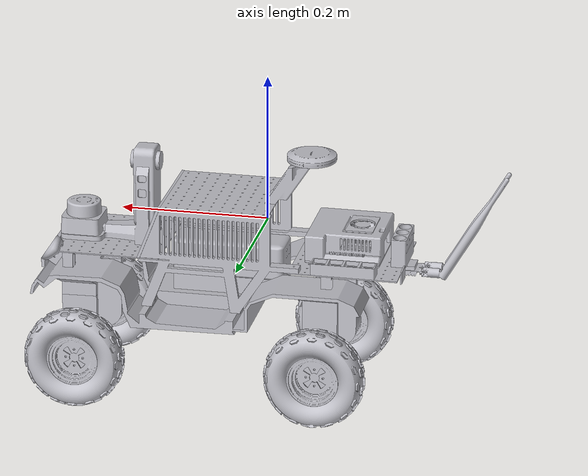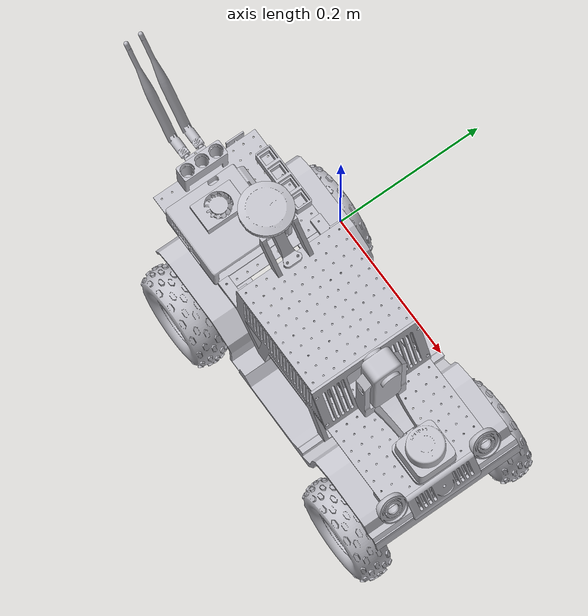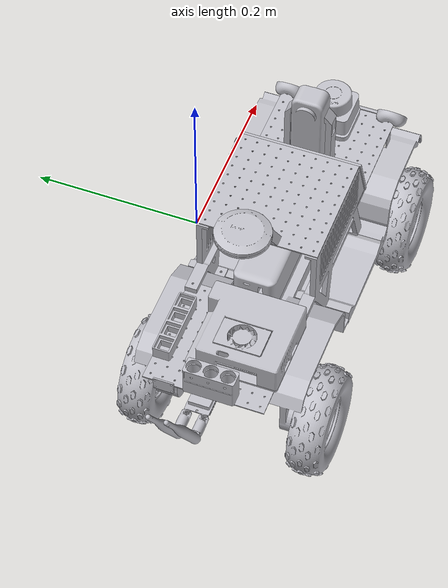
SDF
<sdf version="1.9">
 <model name="ugv">
  <link name="base_footprint">
   <inertial>
    <mass>0.001</mass>
    <inertia><ixx>0.0001</ixx><ixy>0</ixy><ixz>0</ixz><iyy>0.0001</iyy><iyz>0</iyz><izz>0.0001</izz></inertia>
   </inertial>
  </link>
  <joint name="base_joint" type="fixed">
   <parent>base_footprint</parent>
   <child>base_link</child>
   <pose>-0.075 0.075 0.28375 0 0 0</pose>
  </joint>
  <link name="base_link">
   <inertial>
    <mass>8.5</mass>
    <inertia><ixx>0.05</ixx><ixy>0.0</ixy><ixz>0.0</ixz><iyy>0.05</iyy><iyz>0.0</iyz><izz>0.08</izz></inertia>
   </inertial>
   <collision name="base_link_collision">
    <pose>0.095 -0.075 -0.14 0 0 0</pose>
    <geometry><box><size>0.40 0.15 0.15</size></box></geometry>
    <surface><friction><ode><mu>0.20000000000000001</mu><mu2>0.20000000000000001</mu2></ode></friction></surface>
   </collision>
   <collision name="base_link_fixed_joint_lump__CubeFC_v1_1_collision_1">
    <geometry><box><size>0.04 0.04 0.02</size></box></geometry>
    <surface><friction><ode><mu>0.20000000000000001</mu><mu2>0.20000000000000001</mu2></ode></friction></surface>
   </collision>
   <collision name="base_link_fixed_joint_lump__RightSupport_v1_1_collision_2">
    <pose>0.08 -0.07 -0.04 0 0 0</pose>
    <geometry><box><size>0.20 0.01 0.08</size></box></geometry>
    <surface><friction><ode><mu>0.20000000000000001</mu><mu2>0.20000000000000001</mu2></ode></friction></surface>
   </collision>
   <collision name="base_link_fixed_joint_lump__Mounting_Plate_v3_v1_1_collision_3">
    <geometry><box><size>0.27 0.27 0.003</size></box></geometry>
    <surface><friction><ode><mu>0.20000000000000001</mu><mu2>0.20000000000000001</mu2></ode></friction></surface>
   </collision>
   <collision name="base_link_fixed_joint_lump__FrontMountFull_v1_1_collision_4">
    <geometry><box><size>0.08 0.135 0.02</size></box></geometry>
    <surface><friction><ode><mu>0.20000000000000001</mu><mu2>0.20000000000000001</mu2></ode></friction></surface>
   </collision>
   <collision name="base_link_fixed_joint_lump__Insta360MountwithLidar_v1_1_collision_11">
    <geometry><box><size>0.08 0.06 0.03</size></box></geometry>
    <surface><friction><ode><mu>0.20000000000000001</mu><mu2>0.20000000000000001</mu2></ode></friction></surface>
   </collision>
   <collision name="base_link_fixed_joint_lump__360Cam_v4_1_collision_12">
    <geometry><sphere><radius>0.03</radius></sphere></geometry>
    <surface><friction><ode><mu>0.20000000000000001</mu><mu2>0.20000000000000001</mu2></ode></friction></surface>
   </collision>
   <collision name="base_link_fixed_joint_lump__RPLidarC1_v1_1_collision_13">
    <pose>0 0 0 1.5708 0 0</pose>
    <geometry><cylinder><radius>0.04</radius><length>0.04</length></cylinder></geometry>
    <surface><friction><ode><mu>0.20000000000000001</mu><mu2>0.20000000000000001</mu2></ode></friction></surface>
   </collision>
   <collision name="base_link_fixed_joint_lump__Mounting_Plate_v3_v1__1__1_collision_14">
    <geometry><box><size>0.27 0.27 0.003</size></box></geometry>
    <surface><friction><ode><mu>0.20000000000000001</mu><mu2>0.20000000000000001</mu2></ode></friction></surface>
   </collision>
   <collision name="base_link_fixed_joint_lump__JetsonCaseBottom_v1_1_collision_15">
    <geometry><box><size>0.10 0.06 0.02</size></box></geometry>
    <surface><friction><ode><mu>0.20000000000000001</mu><mu2>0.20000000000000001</mu2></ode></friction></surface>
   </collision>
   <collision name="base_link_fixed_joint_lump__RFD900urdf_v1_1_collision_20">
    <geometry><box><size>0.06 0.04 0.015</size></box></geometry>
    <surface><friction><ode><mu>0.20000000000000001</mu><mu2>0.20000000000000001</mu2></ode></friction></surface>
   </collision>
   <collision name="base_link_fixed_joint_lump__TOFSensor_v3_1_collision_25">
    <geometry><box><size>0.02 0.015 0.01</size></box></geometry>
    <surface><friction><ode><mu>0.20000000000000001</mu><mu2>0.20000000000000001</mu2></ode></friction></surface>
   </collision>
   <collision name="base_link_fixed_joint_lump__LeftSupport_v1_1_collision_26">
    <pose>0.08 -0.07 -0.04 0 0 0</pose>
    <geometry><box><size>0.20 0.01 0.08</size></box></geometry>
    <surface><friction><ode><mu>0.20000000000000001</mu><mu2>0.20000000000000001</mu2></ode></friction></surface>
   </collision>
   <collision name="base_link_fixed_joint_lump__Chassis_1_collision_27">
    <pose>-0.05 0.07 0.08 0 0 0</pose>
    <geometry><box><size>0.38 0.28 0.04</size></box></geometry>
    <surface><friction><ode><mu>0.20000000000000001</mu><mu2>0.20000000000000001</mu2></ode></friction></surface>
   </collision>
   <collision name="base_link_fixed_joint_lump__LIPOBattery_v2_1_collision_28">
    <pose>0 0 0.012 0 0 0</pose>
    <geometry><box><size>0.15 0.10 0.04</size></box></geometry>
    <surface><friction><ode><mu>0.20000000000000001</mu><mu2>0.20000000000000001</mu2></ode></friction></surface>
   </collision>
   <collision name="base_link_fixed_joint_lump__Anker_737_Power_Bank_v2_1_collision_29">
    <pose>0 0 0.025 0 0 0</pose>
    <geometry><box><size>0.16 0.08 0.03</size></box></geometry>
    <surface><friction><ode><mu>0.20000000000000001</mu><mu2>0.20000000000000001</mu2></ode></friction></surface>
   </collision>
   <collision name="base_link_fixed_joint_lump__GPS_v1_1_collision_31">
    <geometry><box><size>0.055 0.055 0.015</size></box></geometry>
    <surface><friction><ode><mu>0.20000000000000001</mu><mu2>0.20000000000000001</mu2></ode></friction></surface>
   </collision>
   <collision name="base_link_fixed_joint_lump__FrontCover_v1_1_collision_32">
    <geometry><box><size>0.15 0.15 0.003</size></box></geometry>
    <surface><friction><ode><mu>0.20000000000000001</mu><mu2>0.20000000000000001</mu2></ode></friction></surface>
   </collision>
   <visual name="base_link_visual">
    <geometry>
     <mesh><scale>0.001 0.001 0.001</scale><uri>model://ugv_description/meshes/base_link.stl</uri></mesh>
    </geometry>
    <material>
     <script><name>Gazebo/Silver</name><uri>file://media/materials/scripts/gazebo.material</uri></script>
     <diffuse>0.875 0.875 0.875 1</diffuse>
     <ambient>0.875 0.875 0.875 1</ambient>
    </material>
   </visual>
   <visual name="base_link_fixed_joint_lump__CubeFC_v1_1_visual_1">
    <geometry>
     <mesh><scale>0.001 0.001 0.001</scale><uri>model://ugv_description/meshes/CubeFC_v1_1.stl</uri></mesh>
    </geometry>
    <material>
     <script><name>Gazebo/Silver</name><uri>file://media/materials/scripts/gazebo.material</uri></script>
     <diffuse>0.875 0.875 0.875 1</diffuse>
     <ambient>0.875 0.875 0.875 1</ambient>
    </material>
   </visual>
   <visual name="base_link_fixed_joint_lump__RightSupport_v1_1_visual_2">
    <geometry>
     <mesh><scale>0.001 0.001 0.001</scale><uri>model://ugv_description/meshes/RightSupport_v1_1.stl</uri></mesh>
    </geometry>
    <material>
     <script><name>Gazebo/Silver</name><uri>file://media/materials/scripts/gazebo.material</uri></script>
     <diffuse>0.875 0.875 0.875 1</diffuse>
     <ambient>0.875 0.875 0.875 1</ambient>
    </material>
   </visual>
   <visual name="base_link_fixed_joint_lump__Mounting_Plate_v3_v1_1_visual_3">
    <pose>-6.9388939039072284e-18 0 1.084202172485504e-19 0 0 0</pose>
    <geometry>
     <mesh>
      <scale>0.001 0.001 0.001</scale>
      <uri>model://ugv_description/meshes/Mounting_Plate_v3_v1_1.stl</uri>
     </mesh>
    </geometry>
    <material>
     <script><name>Gazebo/Silver</name><uri>file://media/materials/scripts/gazebo.material</uri></script>
     <diffuse>0.875 0.875 0.875 1</diffuse>
     <ambient>0.875 0.875 0.875 1</ambient>
    </material>
   </visual>
   <visual name="base_link_fixed_joint_lump__FrontMountFull_v1_1_visual_4">
    <pose>-3.4694469519536142e-17 0 1.084202172485504e-19 0 0 0</pose>
    <geometry>
     <mesh><scale>0.001 0.001 0.001</scale><uri>model://ugv_description/meshes/FrontMountFull_v1_1.stl</uri></mesh>
    </geometry>
    <material>
     <script><name>Gazebo/Silver</name><uri>file://media/materials/scripts/gazebo.material</uri></script>
     <diffuse>0.875 0.875 0.875 1</diffuse>
     <ambient>0.875 0.875 0.875 1</ambient>
    </material>
   </visual>
   <visual name="base_link_fixed_joint_lump__FrontLight_v1_1_visual_5">
    <pose>2.0816681711721691e-17 0 1.398620802506301e-17 0 0 0</pose>
    <geometry>
     <mesh><scale>0.001 0.001 0.001</scale><uri>model://ugv_description/meshes/FrontLight_v1_1.stl</uri></mesh>
    </geometry>
    <material>
     <script><name>Gazebo/Silver</name><uri>file://media/materials/scripts/gazebo.material</uri></script>
     <diffuse>0.875 0.875 0.875 1</diffuse>
     <ambient>0.875 0.875 0.875 1</ambient>
    </material>
   </visual>
   <visual name="base_link_fixed_joint_lump__FrontLight_v1__1__1_visual_6">
    <pose>2.0816681711721691e-17 0 1.398620802506301e-17 0 0 0</pose>
    <geometry>
     <mesh><scale>0.001 0.001 0.001</scale><uri>model://ugv_description/meshes/FrontLight_v1__1__1.stl</uri></mesh>
    </geometry>
    <material>
     <script><name>Gazebo/Silver</name><uri>file://media/materials/scripts/gazebo.material</uri></script>
     <diffuse>0.875 0.875 0.875 1</diffuse>
     <ambient>0.875 0.875 0.875 1</ambient>
    </material>
   </visual>
   <visual name="base_link_fixed_joint_lump__Speaker_v1__1__1_visual_7">
    <pose>2.0816681711721691e-17 0 1.084202172485504e-19 0 0 0</pose>
    <geometry>
     <mesh><scale>0.001 0.001 0.001</scale><uri>model://ugv_description/meshes/Speaker_v1__1__1.stl</uri></mesh>
    </geometry>
    <material>
     <script><name>Gazebo/Silver</name><uri>file://media/materials/scripts/gazebo.material</uri></script>
     <diffuse>0.875 0.875 0.875 1</diffuse>
     <ambient>0.875 0.875 0.875 1</ambient>
    </material>
   </visual>
   <visual name="base_link_fixed_joint_lump__Speaker_v1_1_visual_8">
    <pose>2.0816681711721691e-17 0 1.084202172485504e-19 0 0 0</pose>
    <geometry>
     <mesh><scale>0.001 0.001 0.001</scale><uri>model://ugv_description/meshes/Speaker_v1_1.stl</uri></mesh>
    </geometry>
    <material>
     <script><name>Gazebo/Silver</name><uri>file://media/materials/scripts/gazebo.material</uri></script>
     <diffuse>0.875 0.875 0.875 1</diffuse>
     <ambient>0.875 0.875 0.875 1</ambient>
    </material>
   </visual>
   <visual name="base_link_fixed_joint_lump__MountingClipFinal_v1_1_visual_9">
    <pose>-3.4694469519536142e-17 2.775557561562891e-17 1.084202172485504e-19 0 0 0</pose>
    <geometry>
     <mesh>
      <scale>0.001 0.001 0.001</scale>
      <uri>model://ugv_description/meshes/MountingClipFinal_v1_1.stl</uri>
     </mesh>
    </geometry>
    <material>
     <script><name>Gazebo/Silver</name><uri>file://media/materials/scripts/gazebo.material</uri></script>
     <diffuse>0.875 0.875 0.875 1</diffuse>
     <ambient>0.875 0.875 0.875 1</ambient>
    </material>
   </visual>
   <visual name="base_link_fixed_joint_lump__MountingClipFinal_v1__2__1_visual_10">
    <pose>-3.4694469519536142e-17 0 1.084202172485504e-19 0 0 0</pose>
    <geometry>
     <mesh>
      <scale>0.001 0.001 0.001</scale>
      <uri>model://ugv_description/meshes/MountingClipFinal_v1__2__1.stl</uri>
     </mesh>
    </geometry>
    <material>
     <script><name>Gazebo/Silver</name><uri>file://media/materials/scripts/gazebo.material</uri></script>
     <diffuse>0.875 0.875 0.875 1</diffuse>
     <ambient>0.875 0.875 0.875 1</ambient>
    </material>
   </visual>
   <visual name="base_link_fixed_joint_lump__Insta360MountwithLidar_v1_1_visual_11">
    <pose>-6.9388939039072284e-18 2.775557561562891e-17 1.398620802506301e-17 0 0 0</pose>
    <geometry>
     <mesh>
      <scale>0.001 0.001 0.001</scale>
      <uri>model://ugv_description/meshes/Insta360MountwithLidar_v1_1.stl</uri>
     </mesh>
    </geometry>
    <material>
     <script><name>Gazebo/Silver</name><uri>file://media/materials/scripts/gazebo.material</uri></script>
     <diffuse>0.875 0.875 0.875 1</diffuse>
     <ambient>0.875 0.875 0.875 1</ambient>
    </material>
   </visual>
   <visual name="base_link_fixed_joint_lump__360Cam_v4_1_visual_12">
    <pose>-6.9388939039072284e-18 2.775557561562891e-17 -1.3769367590565909e-17 0 0 0</pose>
    <geometry>
     <mesh><scale>0.001 0.001 0.001</scale><uri>model://ugv_description/meshes/360Cam_v4_1.stl</uri></mesh>
    </geometry>
    <material>
     <script><name>Gazebo/Silver</name><uri>file://media/materials/scripts/gazebo.material</uri></script>
     <diffuse>0.875 0.875 0.875 1</diffuse>
     <ambient>0.875 0.875 0.875 1</ambient>
    </material>
   </visual>
   <visual name="base_link_fixed_joint_lump__RPLidarC1_v1_1_visual_13">
    <pose>-6.9388939039072284e-18 2.775557561562891e-17 1.398620802506301e-17 0 0 0</pose>
    <geometry>
     <mesh><scale>0.001 0.001 0.001</scale><uri>model://ugv_description/meshes/RPLidarC1_v1_1.stl</uri></mesh>
    </geometry>
    <material>
     <script><name>Gazebo/Silver</name><uri>file://media/materials/scripts/gazebo.material</uri></script>
     <diffuse>0.875 0.875 0.875 1</diffuse>
     <ambient>0.875 0.875 0.875 1</ambient>
    </material>
   </visual>
   <visual name="base_link_fixed_joint_lump__Mounting_Plate_v3_v1__1__1_visual_14">
    <pose>0 0 1.084202172485504e-19 0 0 0</pose>
    <geometry>
     <mesh>
      <scale>0.001 0.001 0.001</scale>
      <uri>model://ugv_description/meshes/Mounting_Plate_v3_v1__1__1.stl</uri>
     </mesh>
    </geometry>
    <material>
     <script><name>Gazebo/Silver</name><uri>file://media/materials/scripts/gazebo.material</uri></script>
     <diffuse>0.875 0.875 0.875 1</diffuse>
     <ambient>0.875 0.875 0.875 1</ambient>
    </material>
   </visual>
   <visual name="base_link_fixed_joint_lump__JetsonCaseBottom_v1_1_visual_15">
    <pose>0 2.775557561562891e-17 1.084202172485504e-19 0 0 0</pose>
    <geometry>
     <mesh>
      <scale>0.001 0.001 0.001</scale>
      <uri>model://ugv_description/meshes/JetsonCaseBottom_v1_1.stl</uri>
     </mesh>
    </geometry>
    <material>
     <script><name>Gazebo/Silver</name><uri>file://media/materials/scripts/gazebo.material</uri></script>
     <diffuse>0.875 0.875 0.875 1</diffuse>
     <ambient>0.875 0.875 0.875 1</ambient>
    </material>
   </visual>
   <visual name="base_link_fixed_joint_lump__Jetson_Nano_v1_1_visual_16">
    <pose>0 2.775557561562891e-17 1.084202172485504e-19 0 0 0</pose>
    <geometry>
     <mesh><scale>0.001 0.001 0.001</scale><uri>model://ugv_description/meshes/Jetson_Nano_v1_1.stl</uri></mesh>
    </geometry>
    <material>
     <script><name>Gazebo/Silver</name><uri>file://media/materials/scripts/gazebo.material</uri></script>
     <diffuse>0.875 0.875 0.875 1</diffuse>
     <ambient>0.875 0.875 0.875 1</ambient>
    </material>
   </visual>
   <visual name="base_link_fixed_joint_lump__JetsonCaseTop_v1_1_visual_17">
    <pose>0 2.775557561562891e-17 1.084202172485504e-19 0 0 0</pose>
    <geometry>
     <mesh><scale>0.001 0.001 0.001</scale><uri>model://ugv_description/meshes/JetsonCaseTop_v1_1.stl</uri></mesh>
    </geometry>
    <material>
     <script><name>Gazebo/Silver</name><uri>file://media/materials/scripts/gazebo.material</uri></script>
     <diffuse>0.875 0.875 0.875 1</diffuse>
     <ambient>0.875 0.875 0.875 1</ambient>
    </material>
   </visual>
   <visual name="base_link_fixed_joint_lump__KeyHolders_v3_v1_1_visual_18">
    <pose>-1.387778780781446e-17 0 1.084202172485504e-19 0 0 0</pose>
    <geometry>
     <mesh><scale>0.001 0.001 0.001</scale><uri>model://ugv_description/meshes/KeyHolders_v3_v1_1.stl</uri></mesh>
    </geometry>
    <material>
     <script><name>Gazebo/Silver</name><uri>file://media/materials/scripts/gazebo.material</uri></script>
     <diffuse>0.875 0.875 0.875 1</diffuse>
     <ambient>0.875 0.875 0.875 1</ambient>
    </material>
   </visual>
   <visual name="base_link_fixed_joint_lump__3ButtonMount_v1_1_visual_19">
    <pose>0 2.775557561562891e-17 1.084202172485504e-19 0 0 0</pose>
    <geometry>
     <mesh><scale>0.001 0.001 0.001</scale><uri>model://ugv_description/meshes/3ButtonMount_v1_1.stl</uri></mesh>
    </geometry>
    <material>
     <script><name>Gazebo/Silver</name><uri>file://media/materials/scripts/gazebo.material</uri></script>
     <diffuse>0.875 0.875 0.875 1</diffuse>
     <ambient>0.875 0.875 0.875 1</ambient>
    </material>
   </visual>
   <visual name="base_link_fixed_joint_lump__RFD900urdf_v1_1_visual_20">
    <pose>-2.775557561562891e-17 2.775557561562891e-17 1.084202172485504e-19 0 0 0</pose>
    <geometry>
     <mesh><scale>0.001 0.001 0.001</scale><uri>model://ugv_description/meshes/RFD900urdf_v1_1.stl</uri></mesh>
    </geometry>
    <material>
     <script><name>Gazebo/Silver</name><uri>file://media/materials/scripts/gazebo.material</uri></script>
     <diffuse>0.875 0.875 0.875 1</diffuse>
     <ambient>0.875 0.875 0.875 1</ambient>
    </material>
   </visual>
   <visual name="base_link_fixed_joint_lump__RFDAntenna_v1__1__1_visual_21">
    <pose>-2.775557561562891e-17 2.775557561562891e-17 1.084202172485504e-19 0 0 0</pose>
    <geometry>
     <mesh><scale>0.001 0.001 0.001</scale><uri>model://ugv_description/meshes/RFDAntenna_v1__1__1.stl</uri></mesh>
    </geometry>
    <material>
     <script><name>Gazebo/Silver</name><uri>file://media/materials/scripts/gazebo.material</uri></script>
     <diffuse>0.875 0.875 0.875 1</diffuse>
     <ambient>0.875 0.875 0.875 1</ambient>
    </material>
   </visual>
   <visual name="base_link_fixed_joint_lump__RFDAntenna_v1_1_visual_22">
    <pose>-2.775557561562891e-17 2.775557561562891e-17 1.084202172485504e-19 0 0 0</pose>
    <geometry>
     <mesh><scale>0.001 0.001 0.001</scale><uri>model://ugv_description/meshes/RFDAntenna_v1_1.stl</uri></mesh>
    </geometry>
    <material>
     <script><name>Gazebo/Silver</name><uri>file://media/materials/scripts/gazebo.material</uri></script>
     <diffuse>0.875 0.875 0.875 1</diffuse>
     <ambient>0.875 0.875 0.875 1</ambient>
    </material>
   </visual>
   <visual name="base_link_fixed_joint_lump__MountingClipFinal_v1__1__1_visual_23">
    <pose>0 2.775557561562891e-17 1.084202172485504e-19 0 0 0</pose>
    <geometry>
     <mesh>
      <scale>0.001 0.001 0.001</scale>
      <uri>model://ugv_description/meshes/MountingClipFinal_v1__1__1.stl</uri>
     </mesh>
    </geometry>
    <material>
     <script><name>Gazebo/Silver</name><uri>file://media/materials/scripts/gazebo.material</uri></script>
     <diffuse>0.875 0.875 0.875 1</diffuse>
     <ambient>0.875 0.875 0.875 1</ambient>
    </material>
   </visual>
   <visual name="base_link_fixed_joint_lump__MountingClipFinal_v1__3__1_visual_24">
    <pose>0 0 1.084202172485504e-19 0 0 0</pose>
    <geometry>
     <mesh>
      <scale>0.001 0.001 0.001</scale>
      <uri>model://ugv_description/meshes/MountingClipFinal_v1__3__1.stl</uri>
     </mesh>
    </geometry>
    <material>
     <script><name>Gazebo/Silver</name><uri>file://media/materials/scripts/gazebo.material</uri></script>
     <diffuse>0.875 0.875 0.875 1</diffuse>
     <ambient>0.875 0.875 0.875 1</ambient>
    </material>
   </visual>
   <visual name="base_link_fixed_joint_lump__TOFSensor_v3_1_visual_25">
    <pose>0 0 1.084202172485504e-19 0 0 0</pose>
    <geometry>
     <mesh><scale>0.001 0.001 0.001</scale><uri>model://ugv_description/meshes/TOFSensor_v3_1.stl</uri></mesh>
    </geometry>
    <material>
     <script><name>Gazebo/Silver</name><uri>file://media/materials/scripts/gazebo.material</uri></script>
     <diffuse>0.875 0.875 0.875 1</diffuse>
     <ambient>0.875 0.875 0.875 1</ambient>
    </material>
   </visual>
   <visual name="base_link_fixed_joint_lump__LeftSupport_v1_1_visual_26">
    <geometry>
     <mesh><scale>0.001 0.001 0.001</scale><uri>model://ugv_description/meshes/LeftSupport_v1_1.stl</uri></mesh>
    </geometry>
    <material>
     <script><name>Gazebo/Silver</name><uri>file://media/materials/scripts/gazebo.material</uri></script>
     <diffuse>0.875 0.875 0.875 1</diffuse>
     <ambient>0.875 0.875 0.875 1</ambient>
    </material>
   </visual>
   <visual name="base_link_fixed_joint_lump__Chassis_1_visual_27">
    <pose>-6.9388939039072284e-18 -2.0816681711721691e-17 -1.3769367590565909e-17 0 0 0</pose>
    <geometry>
     <mesh><scale>0.001 0.001 0.001</scale><uri>model://ugv_description/meshes/Chassis_1.stl</uri></mesh>
    </geometry>
    <material>
     <script><name>Gazebo/Silver</name><uri>file://media/materials/scripts/gazebo.material</uri></script>
     <diffuse>0.875 0.875 0.875 1</diffuse>
     <ambient>0.875 0.875 0.875 1</ambient>
    </material>
   </visual>
   <visual name="base_link_fixed_joint_lump__LIPOBattery_v2_1_visual_28">
    <pose>-6.9388939039072284e-18 -2.0816681711721691e-17 -1.3769367590565909e-17 0 0 0</pose>
    <geometry>
     <mesh><scale>0.001 0.001 0.001</scale><uri>model://ugv_description/meshes/LIPOBattery_v2_1.stl</uri></mesh>
    </geometry>
    <material>
     <script><name>Gazebo/Silver</name><uri>file://media/materials/scripts/gazebo.material</uri></script>
     <diffuse>0.875 0.875 0.875 1</diffuse>
     <ambient>0.875 0.875 0.875 1</ambient>
    </material>
   </visual>
   <visual name="base_link_fixed_joint_lump__Anker_737_Power_Bank_v2_1_visual_29">
    <pose>-6.9388939039072284e-18 -2.0816681711721691e-17 -1.3769367590565909e-17 0 0 0</pose>
    <geometry>
     <mesh>
      <scale>0.001 0.001 0.001</scale>
      <uri>model://ugv_description/meshes/Anker_737_Power_Bank_v2_1.stl</uri>
     </mesh>
    </geometry>
    <material>
     <script><name>Gazebo/Silver</name><uri>file://media/materials/scripts/gazebo.material</uri></script>
     <diffuse>0.875 0.875 0.875 1</diffuse>
     <ambient>0.875 0.875 0.875 1</ambient>
    </material>
   </visual>
   <visual name="base_link_fixed_joint_lump__GPSMount__1__v1_1_visual_30">
    <geometry>
     <mesh><scale>0.001 0.001 0.001</scale><uri>model://ugv_description/meshes/GPSMount__1__v1_1.stl</uri></mesh>
    </geometry>
    <material>
     <script><name>Gazebo/Silver</name><uri>file://media/materials/scripts/gazebo.material</uri></script>
     <diffuse>0.875 0.875 0.875 1</diffuse>
     <ambient>0.875 0.875 0.875 1</ambient>
    </material>
   </visual>
   <visual name="base_link_fixed_joint_lump__GPS_v1_1_visual_31">
    <geometry>
     <mesh><scale>0.001 0.001 0.001</scale><uri>model://ugv_description/meshes/GPS_v1_1.stl</uri></mesh>
    </geometry>
    <material>
     <script><name>Gazebo/Silver</name><uri>file://media/materials/scripts/gazebo.material</uri></script>
     <diffuse>0.875 0.875 0.875 1</diffuse>
     <ambient>0.875 0.875 0.875 1</ambient>
    </material>
   </visual>
   <visual name="base_link_fixed_joint_lump__FrontCover_v1_1_visual_32">
    <geometry>
     <mesh><scale>0.001 0.001 0.001</scale><uri>model://ugv_description/meshes/FrontCover_v1_1.stl</uri></mesh>
    </geometry>
    <material>
     <script><name>Gazebo/Silver</name><uri>file://media/materials/scripts/gazebo.material</uri></script>
     <diffuse>0.875 0.875 0.875 1</diffuse>
     <ambient>0.875 0.875 0.875 1</ambient>
    </material>
   </visual>
   <self_collide>true</self_collide>
   <self_collide>true</self_collide>
   <self_collide>true</self_collide>
   <self_collide>true</self_collide>
   <self_collide>true</self_collide>
   <self_collide>true</self_collide>
   <self_collide>true</self_collide>
   <self_collide>true</self_collide>
   <self_collide>true</self_collide>
   <self_collide>true</self_collide>
   <self_collide>true</self_collide>
   <self_collide>true</self_collide>
   <self_collide>true</self_collide>
   <self_collide>true</self_collide>
   <self_collide>true</self_collide>
   <self_collide>true</self_collide>
   <self_collide>true</self_collide>
   <self_collide>true</self_collide>
   <self_collide>true</self_collide>
   <self_collide>true</self_collide>
   <self_collide>true</self_collide>
   <self_collide>true</self_collide>
   <self_collide>true</self_collide>
   <self_collide>true</self_collide>
   <self_collide>true</self_collide>
   <self_collide>true</self_collide>
   <self_collide>true</self_collide>
   <self_collide>true</self_collide>
   <self_collide>true</self_collide>
   <self_collide>true</self_collide>
   <self_collide>true</self_collide>
   <self_collide>true</self_collide>
   <self_collide>true</self_collide>
  </link>
  <joint name="back_left_wheel" type="revolute">
   <pose relative_to="base_link">-0.071210999999999997 0.031088999999999981 -0.213259 0 0 0</pose>
   <parent>base_link</parent>
   <child>BackLeft_1</child>
   <axis>
    <xyz>0 1 0</xyz>
    <limit><lower>-1e16</lower><upper>1e16</upper><effort>5.0</effort><velocity>20.0</velocity></limit>
    <dynamics>
     <damping>0.15</damping>
     <friction>0.1</friction>
     <spring_reference>0</spring_reference>
     <spring_stiffness>0</spring_stiffness>
    </dynamics>
   </axis>
  </joint>
  <link name="BackLeft_1">
   <pose relative_to="back_left_wheel">0 0 0 0 0 0</pose>
   <inertial>
    <mass>0.1</mass>
    <inertia><ixx>0.0001</ixx><ixy>0</ixy><ixz>0</ixz><iyy>0.0002</iyy><iyz>0</iyz><izz>0.0001</izz></inertia>
   </inertial>
   <collision name="BackLeft_1_collision">
    <pose>0 0 0 1.5708 0 0</pose>
    <geometry><cylinder><radius>0.070</radius><length>0.050</length></cylinder></geometry>
    <surface>
     <contact>
      <ode><kp>1000000.0</kp><kd>100.0</kd><min_depth>0.001</min_depth><max_vel>0.1</max_vel></ode>
     </contact>
     <friction>
      <ode><mu>1.2</mu><mu2>1.2</mu2><fdir1>0 0 1</fdir1><slip1>0.0</slip1><slip2>0.0</slip2></ode>
     </friction>
    </surface>
   </collision>
   <visual name="BackLeft_1_visual">
    <pose>0.071210999999999997 -0.031088999999999999 0.213259 0 0 0</pose>
    <geometry>
     <mesh><scale>0.001 0.001 0.001</scale><uri>model://ugv_description/meshes/BackLeft_1.stl</uri></mesh>
    </geometry>
    <material>
     <script><name>Gazebo/Silver</name><uri>file://media/materials/scripts/gazebo.material</uri></script>
     <diffuse>0.875 0.875 0.875 1</diffuse>
     <ambient>0.875 0.875 0.875 1</ambient>
    </material>
   </visual>
   <self_collide>true</self_collide>
  </link>
  <joint name="back_right_wheel" type="revolute">
   <pose relative_to="base_link">-0.071210999999999997 -0.181089 -0.213259 0 0 0</pose>
   <parent>base_link</parent>
   <child>BackRight_1</child>
   <axis>
    <xyz>0 1 0</xyz>
    <limit><lower>-1e16</lower><upper>1e16</upper><effort>5.0</effort><velocity>20.0</velocity></limit>
    <dynamics>
     <damping>0.15</damping>
     <friction>0.1</friction>
     <spring_reference>0</spring_reference>
     <spring_stiffness>0</spring_stiffness>
    </dynamics>
   </axis>
  </joint>
  <link name="BackRight_1">
   <pose relative_to="back_right_wheel">0 0 0 0 0 0</pose>
   <inertial>
    <mass>0.1</mass>
    <inertia><ixx>0.0001</ixx><ixy>0</ixy><ixz>0</ixz><iyy>0.0002</iyy><iyz>0</iyz><izz>0.0001</izz></inertia>
   </inertial>
   <collision name="BackRight_1_collision">
    <pose>0 0 0 1.5708 0 0</pose>
    <geometry><cylinder><radius>0.070</radius><length>0.050</length></cylinder></geometry>
    <surface>
     <contact>
      <ode><kp>1000000.0</kp><kd>100.0</kd><min_depth>0.001</min_depth><max_vel>0.1</max_vel></ode>
     </contact>
     <friction>
      <ode><mu>1.2</mu><mu2>1.2</mu2><fdir1>0 0 1</fdir1><slip1>0.0</slip1><slip2>0.0</slip2></ode>
     </friction>
    </surface>
   </collision>
   <visual name="BackRight_1_visual">
    <pose>0.071210999999999997 0.181089 0.213259 0 0 0</pose>
    <geometry>
     <mesh><scale>0.001 0.001 0.001</scale><uri>model://ugv_description/meshes/BackRight_1.stl</uri></mesh>
    </geometry>
    <material>
     <script><name>Gazebo/Silver</name><uri>file://media/materials/scripts/gazebo.material</uri></script>
     <diffuse>0.875 0.875 0.875 1</diffuse>
     <ambient>0.875 0.875 0.875 1</ambient>
    </material>
   </visual>
   <self_collide>true</self_collide>
  </link>
  <joint name="left_steering" type="revolute">
   <pose relative_to="base_link">0.263789 -0.0049110000000000204 -0.134519 0 0 0</pose>
   <parent>base_link</parent>
   <child>LeftHub_1</child>
   <axis>
    <xyz>0 0 1</xyz>
    <limit><lower>-0.7854</lower><upper>0.7854</upper><effort>100</effort><velocity>5.0</velocity></limit>
    <dynamics>
     <damping>0.5</damping>
     <friction>0.1</friction>
     <spring_reference>0</spring_reference>
     <spring_stiffness>2.0</spring_stiffness>
    </dynamics>
   </axis>
  </joint>
  <link name="LeftHub_1">
   <pose relative_to="left_steering">0 0 0 0 0 0</pose>
   <inertial>
    <pose>-1.5581269489139959e-05 0.012161091745128619 -0.067076238692499984 0 0 0</pose>
    <mass>0.75461894238661376</mass>
    <inertia>
     <ixx>0.00057799999999999995</ixx>
     <ixy>0</ixy>
     <ixz>9.9999999999999995e-07</ixz>
     <iyy>0.00058600000000000004</iyy>
     <iyz>0.000107</iyz>
     <izz>0.000234</izz>
    </inertia>
   </inertial>
   <collision name="LeftHub_1_collision">
    <pose>0 0 -0.04 1.5708 0 0</pose>
    <geometry><cylinder><radius>0.03</radius><length>0.06</length></cylinder></geometry>
    <surface><friction><ode><mu>0.20000000000000001</mu><mu2>0.20000000000000001</mu2></ode></friction></surface>
   </collision>
   <visual name="LeftHub_1_visual">
    <pose>-0.263789 0.0049109999999999996 0.134519 0 0 0</pose>
    <geometry>
     <mesh><scale>0.001 0.001 0.001</scale><uri>model://ugv_description/meshes/LeftHub_1.stl</uri></mesh>
    </geometry>
    <material>
     <script><name>Gazebo/Silver</name><uri>file://media/materials/scripts/gazebo.material</uri></script>
     <diffuse>0.875 0.875 0.875 1</diffuse>
     <ambient>0.875 0.875 0.875 1</ambient>
    </material>
   </visual>
   <self_collide>true</self_collide>
  </link>
  <joint name="front_left_wheel" type="revolute">
   <pose relative_to="LeftHub_1">0 0.035999999999999997 -0.078740000000000004 0 0 0</pose>
   <parent>LeftHub_1</parent>
   <child>FrontLeft_1</child>
   <axis>
    <xyz>0 1 0</xyz>
    <limit><lower>-1e16</lower><upper>1e16</upper><effort>5.0</effort><velocity>20.0</velocity></limit>
    <dynamics>
     <damping>0.15</damping>
     <friction>0.1</friction>
     <spring_reference>0</spring_reference>
     <spring_stiffness>0</spring_stiffness>
    </dynamics>
   </axis>
  </joint>
  <link name="FrontLeft_1">
   <pose relative_to="front_left_wheel">0 0 0 0 0 0</pose>
   <inertial>
    <mass>0.1</mass>
    <inertia><ixx>0.0001</ixx><ixy>0</ixy><ixz>0</ixz><iyy>0.0002</iyy><iyz>0</iyz><izz>0.0001</izz></inertia>
   </inertial>
   <collision name="FrontLeft_1_collision">
    <pose>0 0 0 1.5708 0 0</pose>
    <geometry><cylinder><radius>0.070</radius><length>0.050</length></cylinder></geometry>
    <surface>
     <contact>
      <ode><kp>1000000.0</kp><kd>100.0</kd><min_depth>0.001</min_depth><max_vel>0.1</max_vel></ode>
     </contact>
     <friction>
      <ode><mu>1.2</mu><mu2>1.2</mu2><fdir1>0 0 1</fdir1><slip1>0.0</slip1><slip2>0.0</slip2></ode>
     </friction>
    </surface>
   </collision>
   <visual name="FrontLeft_1_visual">
    <pose>-0.263789 -0.031088999999999999 0.213259 0 0 0</pose>
    <geometry>
     <mesh><scale>0.001 0.001 0.001</scale><uri>model://ugv_description/meshes/FrontLeft_1.stl</uri></mesh>
    </geometry>
    <material>
     <script><name>Gazebo/Silver</name><uri>file://media/materials/scripts/gazebo.material</uri></script>
     <diffuse>0.875 0.875 0.875 1</diffuse>
     <ambient>0.875 0.875 0.875 1</ambient>
    </material>
   </visual>
   <self_collide>true</self_collide>
  </link>
  <joint name="right_steering" type="revolute">
   <pose relative_to="base_link">0.263789 -0.145089 -0.134519 0 0 0</pose>
   <parent>base_link</parent>
   <child>RightHub__1</child>
   <axis>
    <xyz>0 0 1</xyz>
    <limit><lower>-0.7854</lower><upper>0.7854</upper><effort>100</effort><velocity>5.0</velocity></limit>
    <dynamics>
     <damping>0.5</damping>
     <friction>0.1</friction>
     <spring_reference>0</spring_reference>
     <spring_stiffness>2.0</spring_stiffness>
    </dynamics>
   </axis>
  </joint>
  <link name="RightHub__1">
   <pose relative_to="right_steering">0 0 0 0 0 0</pose>
   <inertial>
    <pose>-1.5581269489250978e-05 -0.012161091298093981 -0.067076238692500068 0 0 0</pose>
    <mass>0.7546189423866142</mass>
    <inertia>
     <ixx>0.00057799999999999995</ixx>
     <ixy>0</ixy>
     <ixz>9.9999999999999995e-07</ixz>
     <iyy>0.00058600000000000004</iyy>
     <iyz>-0.000107</iyz>
     <izz>0.000234</izz>
    </inertia>
   </inertial>
   <collision name="RightHub__1_collision">
    <pose>0 0 -0.04 1.5708 0 0</pose>
    <geometry><cylinder><radius>0.03</radius><length>0.06</length></cylinder></geometry>
    <surface><friction><ode><mu>0.20000000000000001</mu><mu2>0.20000000000000001</mu2></ode></friction></surface>
   </collision>
   <visual name="RightHub__1_visual">
    <pose>-0.263789 0.145089 0.134519 0 0 0</pose>
    <geometry>
     <mesh><scale>0.001 0.001 0.001</scale><uri>model://ugv_description/meshes/RightHub__1.stl</uri></mesh>
    </geometry>
    <material>
     <script><name>Gazebo/Silver</name><uri>file://media/materials/scripts/gazebo.material</uri></script>
     <diffuse>0.875 0.875 0.875 1</diffuse>
     <ambient>0.875 0.875 0.875 1</ambient>
    </material>
   </visual>
   <self_collide>true</self_collide>
  </link>
  <joint name="front_right_wheel" type="revolute">
   <pose relative_to="RightHub__1">0 -0.035999999999999997 -0.078740000000000004 0 0 0</pose>
   <parent>RightHub__1</parent>
   <child>FrontRight_1</child>
   <axis>
    <xyz>0 1 0</xyz>
    <limit><lower>-1e16</lower><upper>1e16</upper><effort>5.0</effort><velocity>20.0</velocity></limit>
    <dynamics>
     <damping>0.15</damping>
     <friction>0.1</friction>
     <spring_reference>0</spring_reference>
     <spring_stiffness>0</spring_stiffness>
    </dynamics>
   </axis>
  </joint>
  <link name="FrontRight_1">
   <pose relative_to="front_right_wheel">0 0 0 0 0 0</pose>
   <inertial>
    <mass>0.1</mass>
    <inertia><ixx>0.0001</ixx><ixy>0</ixy><ixz>0</ixz><iyy>0.0002</iyy><iyz>0</iyz><izz>0.0001</izz></inertia>
   </inertial>
   <collision name="FrontRight_1_collision">
    <pose>0 0 0 1.5708 0 0</pose>
    <geometry><cylinder><radius>0.070</radius><length>0.050</length></cylinder></geometry>
    <surface>
     <contact>
      <ode><kp>1000000.0</kp><kd>100.0</kd><min_depth>0.001</min_depth><max_vel>0.1</max_vel></ode>
     </contact>
     <friction>
      <ode><mu>1.2</mu><mu2>1.2</mu2><fdir1>0 0 1</fdir1><slip1>0.0</slip1><slip2>0.0</slip2></ode>
     </friction>
    </surface>
   </collision>
   <visual name="FrontRight_1_visual">
    <pose>-0.263789 0.181089 0.213259 0 0 0</pose>
    <geometry>
     <mesh><scale>0.001 0.001 0.001</scale><uri>model://ugv_description/meshes/FrontRight_1.stl</uri></mesh>
    </geometry>
    <material>
     <script><name>Gazebo/Silver</name><uri>file://media/materials/scripts/gazebo.material</uri></script>
     <diffuse>0.875 0.875 0.875 1</diffuse>
     <ambient>0.875 0.875 0.875 1</ambient>
    </material>
   </visual>
   <self_collide>true</self_collide>
  </link>
  <frame name="Rigid 11" attached_to="base_link">
   <pose>0.097500000000000003 -0.1125 -0.000125 0 0 0</pose>
  </frame>
  <frame name="CubeFC_v1_1" attached_to="Rigid 11"/>
  <frame name="Rigid 13" attached_to="FrontMountFull_v1_1">
   <pose>0.024275999999999999 0.01375 0.0012110000000000001 0 0 0</pose>
  </frame>
  <frame name="FrontLight_v1_1" attached_to="Rigid 13"/>
  <frame name="Rigid 14" attached_to="FrontMountFull_v1_1">
   <pose>0.024275999999999999 -0.12125 0.0012110000000000001 0 0 0</pose>
  </frame>
  <frame name="FrontLight_v1__1__1" attached_to="Rigid 14"/>
  <frame name="Rigid 15" attached_to="FrontMountFull_v1_1">
   <pose>0.025597999999999999 -0.0092759999999999995 -0.016879000000000002 0 0 0</pose>
  </frame>
  <frame name="Speaker_v1__1__1" attached_to="Rigid 15"/>
  <frame name="Rigid 16" attached_to="FrontMountFull_v1_1">
   <pose>0.025597999999999999 -0.098224000000000006 -0.016879000000000002 0 0 0</pose>
  </frame>
  <frame name="Speaker_v1_1" attached_to="Rigid 16"/>
  <frame name="Rigid 12" attached_to="Mounting_Plate_v3_v1_1"><pose>0.12 0.12 0 0 0 0</pose></frame>
  <frame name="FrontMountFull_v1_1" attached_to="Rigid 12"/>
  <frame name="Rigid 27" attached_to="Mounting_Plate_v3_v1_1">
   <pose>0.12 0.13500000000000001 0 0 0 0</pose>
  </frame>
  <frame name="MountingClipFinal_v1_1" attached_to="Rigid 27"/>
  <frame name="Rigid 28" attached_to="Mounting_Plate_v3_v1_1"><pose>0.12 0 0 0 0 0</pose></frame>
  <frame name="MountingClipFinal_v1__2__1" attached_to="Rigid 28"/>
  <frame name="Rigid 39" attached_to="Insta360MountwithLidar_v1_1">
   <pose>-0.1173 0 0.021499999999999998 0 0 0</pose>
  </frame>
  <frame name="360Cam_v4_1" attached_to="Rigid 39"/>
  <frame name="Rigid 40" attached_to="Insta360MountwithLidar_v1_1">
   <pose>0 0 0.0070000000000000001 0 0 0</pose>
  </frame>
  <frame name="RPLidarC1_v1_1" attached_to="Rigid 40"/>
  <frame name="Rigid 38" attached_to="Mounting_Plate_v3_v1_1">
   <pose>0.14249999999999999 0.067500000000000004 0.001575 0 0 0</pose>
  </frame>
  <frame name="Insta360MountwithLidar_v1_1" attached_to="Rigid 38"/>
  <frame name="Rigid 4" attached_to="RightSupport_v1_1"><pose>0.152 0 -0.073124999999999996 0 0 0</pose></frame>
  <frame name="Mounting_Plate_v3_v1_1" attached_to="Rigid 4"/>
  <frame name="Rigid 44" attached_to="JetsonCaseBottom_v1_1">
   <pose>0.00125 0.00061300000000000005 0.0040000000000000001 0 0 0</pose>
  </frame>
  <frame name="Jetson_Nano_v1_1" attached_to="Rigid 44"/>
  <frame name="Rigid 45" attached_to="JetsonCaseBottom_v1_1">
   <pose>0.00083799999999999999 0.057612999999999998 0.0040000000000000001 0 0 0</pose>
  </frame>
  <frame name="JetsonCaseTop_v1_1" attached_to="Rigid 45"/>
  <frame name="Rigid 19" attached_to="Mounting_Plate_v3_v1__1__1">
   <pose>-0.059999999999999998 0.044999999999999998 0 0 0 0</pose>
  </frame>
  <frame name="JetsonCaseBottom_v1_1" attached_to="Rigid 19"/>
  <frame name="Rigid 22" attached_to="Mounting_Plate_v3_v1__1__1">
   <pose>-0.067500000000000004 0.14249999999999999 0 0 0 0</pose>
  </frame>
  <frame name="KeyHolders_v3_v1_1" attached_to="Rigid 22"/>
  <frame name="Rigid 23" attached_to="Mounting_Plate_v3_v1__1__1">
   <pose>-0.13500000000000001 0.059999999999999998 0 0 0 0</pose>
  </frame>
  <frame name="3ButtonMount_v1_1" attached_to="Rigid 23"/>
  <frame name="Rigid 25" attached_to="RFD900urdf_v1_1">
   <pose>0.153553 0.003947 0.071274000000000004 0 0 0</pose>
  </frame>
  <frame name="RFDAntenna_v1__1__1" attached_to="Rigid 25"/>
  <frame name="Rigid 26" attached_to="RFD900urdf_v1_1">
   <pose>0.153553 0.024983000000000002 0.071274000000000004 0 0 0</pose>
  </frame>
  <frame name="RFDAntenna_v1_1" attached_to="Rigid 26"/>
  <frame name="Rigid 24" attached_to="Mounting_Plate_v3_v1__1__1">
   <pose>-0.31950000000000001 0.053034999999999999 -0.080349000000000004 0 0 0</pose>
  </frame>
  <frame name="RFD900urdf_v1_1" attached_to="Rigid 24"/>
  <frame name="Rigid 29" attached_to="Mounting_Plate_v3_v1__1__1">
   <pose>-0.044999999999999998 0.13500000000000001 -0.001575 0 0 0</pose>
  </frame>
  <frame name="MountingClipFinal_v1__1__1" attached_to="Rigid 29"/>
  <frame name="Rigid 30" attached_to="Mounting_Plate_v3_v1__1__1">
   <pose>-0.044999999999999998 0 -0.001575 0 0 0</pose>
  </frame>
  <frame name="MountingClipFinal_v1__3__1" attached_to="Rigid 30"/>
  <frame name="Rigid 51" attached_to="Mounting_Plate_v3_v1__1__1">
   <pose>-0.14449999999999999 0.114757 -0.00078700000000000005 0 0 0</pose>
  </frame>
  <frame name="TOFSensor_v3_1" attached_to="Rigid 51"/>
  <frame name="Rigid 6" attached_to="RightSupport_v1_1">
   <pose>-0.042000000000000003 0 -0.077200000000000005 0 0 0</pose>
  </frame>
  <frame name="Mounting_Plate_v3_v1__1__1" attached_to="Rigid 6"/>
  <frame name="Rigid 2" attached_to="base_link">
   <pose>0.0074999999999999997 -0.14249999999999999 -0.000125 0 0 0</pose>
  </frame>
  <frame name="RightSupport_v1_1" attached_to="Rigid 2"/>
  <frame name="Rigid 31" attached_to="LIPOBattery_v2_1"><pose>0 0 0.024 0 0 0</pose></frame>
  <frame name="Anker_737_Power_Bank_v2_1" attached_to="Rigid 31"/>
  <frame name="Rigid 46" attached_to="Chassis_1">
   <pose>-0.068000000000000005 0.072499999999999995 0.080250000000000002 0 0 0</pose>
  </frame>
  <frame name="LIPOBattery_v2_1" attached_to="Rigid 46"/>
  <frame name="Rigid 42" attached_to="LeftSupport_v1_1">
   <pose>0.1265 -0.14000000000000001 -0.21512500000000001 0 0 0</pose>
  </frame>
  <frame name="Chassis_1" attached_to="Rigid 42"/>
  <frame name="Rigid 3" attached_to="base_link">
   <pose>0.0074999999999999997 -0.0074999999999999997 -0.000125 0 0 0</pose>
  </frame>
  <frame name="LeftSupport_v1_1" attached_to="Rigid 3"/>
  <frame name="Rigid 59" attached_to="GPSMount__1__v1_1">
   <pose>-0.053386000000000003 -0.01745 0.057500000000000002 0 0 0</pose>
  </frame>
  <frame name="GPS_v1_1" attached_to="Rigid 59"/>
  <frame name="Rigid 58" attached_to="base_link">
   <pose>0.0074999999999999997 -0.067500000000000004 0.0014499999999999999 0 0 0</pose>
  </frame>
  <frame name="GPSMount__1__v1_1" attached_to="Rigid 58"/>
  <frame name="Rigid 7" attached_to="base_link">
   <pose>0.14999999999999999 -0.074999999999999997 0.0014499999999999999 0 0 0</pose>
  </frame>
  <frame name="FrontCover_v1_1" attached_to="Rigid 7"/>
  <joint name="imu0_joint" type="fixed">
   <parent>base_link</parent>
   <child>imu0_link</child>
   <pose relative_to="CubeFC_v1_1">0.0 0.0 0.005 3.14159 0 0</pose>
  </joint>
  <link name="imu0_link">
   <pose relative_to="imu0_joint">0 0 0 0 0 0</pose>
   <inertial>
    <mass>0.001</mass>
    <inertia>
     <ixx>1.66667e-09</ixx>
     <ixy>0</ixy>
     <ixz>0</ixz>
     <iyy>1.66667e-09</iyy>
     <iyz>0</iyz>
     <izz>1.66667e-09</izz>
    </inertia>
   </inertial>
   <sensor name="imu0_sensor" type="imu">
    <always_on>true</always_on>
    <update_rate>400</update_rate>
    <visualize>true</visualize>
    <topic>imu0/data</topic>
    <imu>
     <angular_velocity>
      <x>
       <noise type="gaussian">
        <mean>0.0</mean>
        <stddev>2e-4</stddev>
        <bias_mean>0.0000075</bias_mean>
        <bias_stddev>0.0000008</bias_stddev>
       </noise>
      </x>
      <y>
       <noise type="gaussian">
        <mean>0.0</mean>
        <stddev>2e-4</stddev>
        <bias_mean>0.0000075</bias_mean>
        <bias_stddev>0.0000008</bias_stddev>
       </noise>
      </y>
      <z>
       <noise type="gaussian">
        <mean>0.0</mean>
        <stddev>2e-4</stddev>
        <bias_mean>0.0000075</bias_mean>
        <bias_stddev>0.0000008</bias_stddev>
       </noise>
      </z>
     </angular_velocity>
     <linear_acceleration>
      <x>
       <noise type="gaussian">
        <mean>0.0</mean>
        <stddev>1.7e-2</stddev>
        <bias_mean>0.1</bias_mean>
        <bias_stddev>0.001</bias_stddev>
       </noise>
      </x>
      <y>
       <noise type="gaussian">
        <mean>0.0</mean>
        <stddev>1.7e-2</stddev>
        <bias_mean>0.1</bias_mean>
        <bias_stddev>0.001</bias_stddev>
       </noise>
      </y>
      <z>
       <noise type="gaussian">
        <mean>0.0</mean>
        <stddev>1.7e-2</stddev>
        <bias_mean>0.1</bias_mean>
        <bias_stddev>0.001</bias_stddev>
       </noise>
      </z>
     </linear_acceleration>
    </imu>
   </sensor>
  </link>
  <joint name="imu1_joint" type="fixed">
   <parent>base_link</parent>
   <child>imu1_link</child>
   <pose relative_to="CubeFC_v1_1">0.0 0.0 0.0055 3.14159 0 0</pose>
  </joint>
  <link name="imu1_link">
   <pose relative_to="imu1_joint">0 0 0 0 0 0</pose>
   <inertial>
    <mass>0.001</mass>
    <inertia>
     <ixx>1.66667e-09</ixx>
     <ixy>0</ixy>
     <ixz>0</ixz>
     <iyy>1.66667e-09</iyy>
     <iyz>0</iyz>
     <izz>1.66667e-09</izz>
    </inertia>
   </inertial>
   <sensor name="imu1_sensor" type="imu">
    <always_on>true</always_on>
    <update_rate>400</update_rate>
    <visualize>true</visualize>
    <topic>imu1/data</topic>
    <imu>
     <angular_velocity>
      <x>
       <noise type="gaussian">
        <mean>0.0</mean>
        <stddev>2e-4</stddev>
        <bias_mean>0.0000075</bias_mean>
        <bias_stddev>0.0000008</bias_stddev>
       </noise>
      </x>
      <y>
       <noise type="gaussian">
        <mean>0.0</mean>
        <stddev>2e-4</stddev>
        <bias_mean>0.0000075</bias_mean>
        <bias_stddev>0.0000008</bias_stddev>
       </noise>
      </y>
      <z>
       <noise type="gaussian">
        <mean>0.0</mean>
        <stddev>2e-4</stddev>
        <bias_mean>0.0000075</bias_mean>
        <bias_stddev>0.0000008</bias_stddev>
       </noise>
      </z>
     </angular_velocity>
     <linear_acceleration>
      <x>
       <noise type="gaussian">
        <mean>0.0</mean>
        <stddev>1.7e-2</stddev>
        <bias_mean>0.1</bias_mean>
        <bias_stddev>0.001</bias_stddev>
       </noise>
      </x>
      <y>
       <noise type="gaussian">
        <mean>0.0</mean>
        <stddev>1.7e-2</stddev>
        <bias_mean>0.1</bias_mean>
        <bias_stddev>0.001</bias_stddev>
       </noise>
      </y>
      <z>
       <noise type="gaussian">
        <mean>0.0</mean>
        <stddev>1.7e-2</stddev>
        <bias_mean>0.1</bias_mean>
        <bias_stddev>0.001</bias_stddev>
       </noise>
      </z>
     </linear_acceleration>
    </imu>
   </sensor>
  </link>
  <joint name="imu2_joint" type="fixed">
   <parent>base_link</parent>
   <child>imu2_link</child>
   <pose relative_to="CubeFC_v1_1">0.0 0.0 0.006 3.14159 0 0</pose>
  </joint>
  <link name="imu2_link">
   <pose relative_to="imu2_joint">0 0 0 0 0 0</pose>
   <inertial>
    <mass>0.001</mass>
    <inertia>
     <ixx>1.66667e-09</ixx>
     <ixy>0</ixy>
     <ixz>0</ixz>
     <iyy>1.66667e-09</iyy>
     <iyz>0</iyz>
     <izz>1.66667e-09</izz>
    </inertia>
   </inertial>
   <sensor name="imu2_sensor" type="imu">
    <always_on>true</always_on>
    <update_rate>400</update_rate>
    <visualize>true</visualize>
    <topic>imu2/data</topic>
    <imu>
     <angular_velocity>
      <x>
       <noise type="gaussian">
        <mean>0.0</mean>
        <stddev>2e-4</stddev>
        <bias_mean>0.0000075</bias_mean>
        <bias_stddev>0.0000008</bias_stddev>
       </noise>
      </x>
      <y>
       <noise type="gaussian">
        <mean>0.0</mean>
        <stddev>2e-4</stddev>
        <bias_mean>0.0000075</bias_mean>
        <bias_stddev>0.0000008</bias_stddev>
       </noise>
      </y>
      <z>
       <noise type="gaussian">
        <mean>0.0</mean>
        <stddev>2e-4</stddev>
        <bias_mean>0.0000075</bias_mean>
        <bias_stddev>0.0000008</bias_stddev>
       </noise>
      </z>
     </angular_velocity>
     <linear_acceleration>
      <x>
       <noise type="gaussian">
        <mean>0.0</mean>
        <stddev>1.7e-2</stddev>
        <bias_mean>0.1</bias_mean>
        <bias_stddev>0.001</bias_stddev>
       </noise>
      </x>
      <y>
       <noise type="gaussian">
        <mean>0.0</mean>
        <stddev>1.7e-2</stddev>
        <bias_mean>0.1</bias_mean>
        <bias_stddev>0.001</bias_stddev>
       </noise>
      </y>
      <z>
       <noise type="gaussian">
        <mean>0.0</mean>
        <stddev>1.7e-2</stddev>
        <bias_mean>0.1</bias_mean>
        <bias_stddev>0.001</bias_stddev>
       </noise>
      </z>
     </linear_acceleration>
    </imu>
   </sensor>
  </link>
  <joint name="camera_front_joint" type="fixed">
   <parent>360Cam_v4_1</parent>
   <child>camera_front_link</child>
   <pose relative_to="360Cam_v4_1">0.022 0 0.093445 0 0 0</pose>
  </joint>
  <link name="camera_front_link">
   <pose relative_to="camera_front_joint"/>
   <sensor name="camera_front" type="wideanglecamera">
    <always_on>1</always_on>
    <visualize>true</visualize>
    <update_rate>30</update_rate>
    <topic>camera/front</topic>
    <camera>
     <horizontal_fov>2.8798</horizontal_fov>
     <image><width>640</width><height>360</height><format>R8G8B8</format></image>
     <clip><near>0.1</near><far>100</far></clip>
     <lens>
      <type>stereographic</type>
      <scale_to_hfov>true</scale_to_hfov>
      <cutoff_angle>1.5708</cutoff_angle>
      <env_texture_size>512</env_texture_size>
     </lens>
    </camera>
   </sensor>
  </link>
  <joint name="camera_back_joint" type="fixed">
   <parent>360Cam_v4_1</parent>
   <child>camera_back_link</child>
   <pose relative_to="360Cam_v4_1">-0.022 0 0.093445 0 0 3.14159</pose>
  </joint>
  <link name="camera_back_link">
   <pose relative_to="camera_back_joint"/>
   <sensor name="camera_back" type="wideanglecamera">
    <always_on>1</always_on>
    <visualize>true</visualize>
    <update_rate>30</update_rate>
    <topic>camera/back</topic>
    <camera>
     <horizontal_fov>2.8798</horizontal_fov>
     <image><width>640</width><height>360</height><format>R8G8B8</format></image>
     <clip><near>0.1</near><far>100</far></clip>
     <lens>
      <type>stereographic</type>
      <scale_to_hfov>true</scale_to_hfov>
      <cutoff_angle>1.5708</cutoff_angle>
      <env_texture_size>512</env_texture_size>
     </lens>
    </camera>
   </sensor>
  </link>
  <joint name="lidar_2d_joint" type="fixed">
   <parent>RPLidarC1_v1_1</parent>
   <child>lidar_2d_link</child>
   <pose relative_to="RPLidarC1_v1_1">-0.02780 0 0.03310 0 0 0</pose>
  </joint>
  <link name="lidar_2d_link">
   <pose relative_to="lidar_2d_joint"/>
   <sensor name="lidar_2d" type="gpu_lidar">
    <always_on>true</always_on>
    <visualize>true</visualize>
    <update_rate>10</update_rate>
    <topic>scan</topic>
    <lidar>
     <scan>
      <horizontal>
       <samples>720</samples>
       <resolution>1.0</resolution>
       <min_angle>0.0</min_angle>
       <max_angle>6.28318530718</max_angle>
      </horizontal>
     </scan>
     <range><min>0.05</min><max>12.0</max><resolution>0.01</resolution></range>
     <noise><type>gaussian</type><mean>0.0</mean><stddev>0.01</stddev></noise>
    </lidar>
   </sensor>
  </link>
  <joint name="tof_joint" type="fixed">
   <parent>TOFSensor_v3_1</parent>
   <child>tof_link</child>
   <pose relative_to="TOFSensor_v3_1">0 0 0 0 0 3.14159</pose>
  </joint>
  <link name="tof_link">
   <pose relative_to="tof_joint"/>
   <sensor name="tof_range" type="gpu_lidar">
    <always_on>true</always_on>
    <visualize>true</visualize>
    <update_rate>50</update_rate>
    <topic>tof/range</topic>
    <lidar>
     <scan>
      <horizontal>
       <samples>1</samples>
       <resolution>1.0</resolution>
       <min_angle>0.0</min_angle>
       <max_angle>0.0</max_angle>
      </horizontal>
     </scan>
     <range><min>0.030</min><max>1.0</max><resolution>0.001</resolution></range>
     <noise><type>gaussian</type><mean>0.0</mean><stddev>0.003</stddev></noise>
    </lidar>
   </sensor>
  </link>
  <joint name="gps_joint" type="fixed">
   <parent>GPS_v1_1</parent>
   <child>gps_link</child>
   <pose relative_to="GPS_v1_1">0 0.00995 0 0 0 0</pose>
  </joint>
  <link name="gps_link">
   <pose relative_to="gps_joint"/>
   <sensor name="gps" type="navsat">
    <always_on>true</always_on>
    <update_rate>10</update_rate>
    <topic>gps/fix</topic>
    <navsat>
     <position_sensing>
      <horizontal><noise type="gaussian"><mean>0.0</mean><stddev>1.0</stddev></noise></horizontal>
      <vertical><noise type="gaussian"><mean>0.0</mean><stddev>1.5</stddev></noise></vertical>
     </position_sensing>
     <velocity_sensing>
      <horizontal><noise type="gaussian"><mean>0.0</mean><stddev>0.05</stddev></noise></horizontal>
      <vertical><noise type="gaussian"><mean>0.0</mean><stddev>0.1</stddev></noise></vertical>
     </velocity_sensing>
    </navsat>
   </sensor>
  </link>
  <plugin filename="gz-sim-ackermann-steering-system" name="gz::sim::systems::AckermannSteering">
   <left_steering_joint>left_steering</left_steering_joint>
   <right_steering_joint>right_steering</right_steering_joint>
   <left_joint>back_left_wheel</left_joint>
   <right_joint>back_right_wheel</right_joint>
   <left_joint>front_left_wheel</left_joint>
   <right_joint>front_right_wheel</right_joint>
   <wheel_base>0.336</wheel_base>
   <wheel_separation>0.212178</wheel_separation>
   <kingpin_width>0.19</kingpin_width>
   <wheel_radius>0.070</wheel_radius>
   <steering_limit>0.7854</steering_limit>
   <min_velocity>-5.0</min_velocity>
   <max_velocity>5.0</max_velocity>
   <min_acceleration>-3.0</min_acceleration>
   <max_acceleration>2.0</max_acceleration>
   <steering_only>false</steering_only>
   <topic>cmd_vel</topic>
   <odom_topic>odom</odom_topic>
   <frame_id>odom</frame_id>
   <child_frame_id>base_link</child_frame_id>
   <odom_publish_frequency>50</odom_publish_frequency>
  </plugin>
  <plugin filename="gz-sim-joint-state-publisher-system" name="gz::sim::systems::JointStatePublisher">
   <topic>joint_states</topic>
   <update_rate>50</update_rate>
  </plugin>
 </model>
</sdf>
